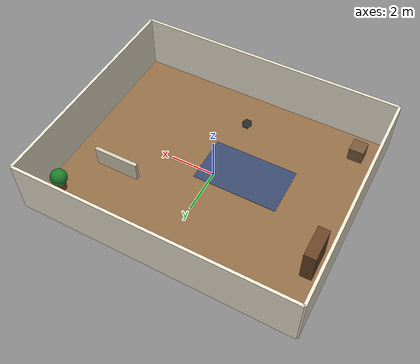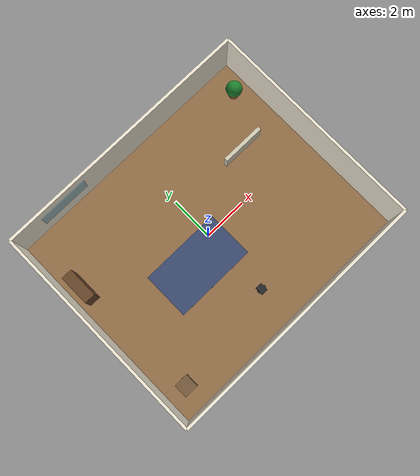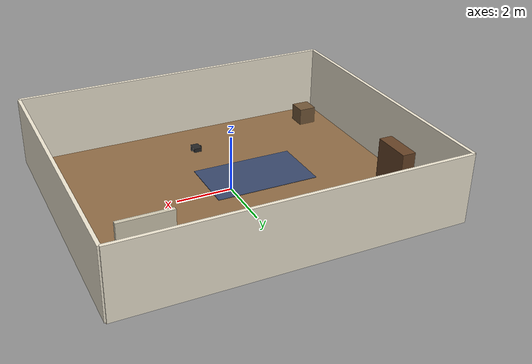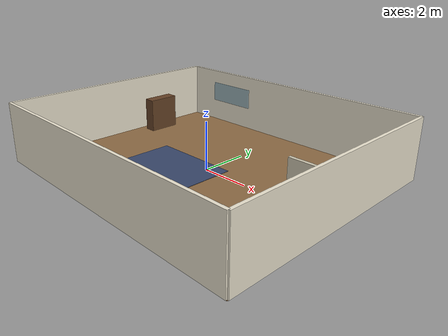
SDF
<sdf version="1.8">
 <world name="living_room_world">
  <physics name="1ms" type="ignored">
   <max_step_size>0.003</max_step_size>
   <real_time_factor>1.0</real_time_factor>
  </physics>
  <plugin filename="ignition-gazebo-physics-system" name="gz::sim::systems::Physics"/>
  <plugin filename="ignition-gazebo-user-commands-system" name="gz::sim::systems::UserCommands"/>
  <plugin filename="ignition-gazebo-scene-broadcaster-system" name="gz::sim::systems::SceneBroadcaster"/>
  <plugin filename="ignition-gazebo-sensors-system" name="gz::sim::systems::Sensors">
   <render_engine>ogre2</render_engine>
  </plugin>
  <plugin filename="ignition-gazebo-imu-system" name="gz::sim::systems::Imu"/>
  <scene>
   <ambient>0.62 0.60 0.56 1</ambient>
   <background>0.78 0.84 0.88 1</background>
   <shadows>true</shadows>
  </scene>
  <light type="directional" name="sun">
   <pose>0 0 10 0 0 0</pose>
   <diffuse>0.95 0.92 0.86 1</diffuse>
   <specular>0.25 0.25 0.25 1</specular>
   <attenuation>
    <range>1000</range>
    <constant>0.9</constant>
    <linear>0.01</linear>
    <quadratic>0.001</quadratic>
   </attenuation>
   <direction>-0.35 0.25 -1.0</direction>
  </light>
  <light type="point" name="warm_room_light">
   <pose>-3.9 3.6 2.5 0 0 0</pose>
   <diffuse>0.95 0.78 0.52 1</diffuse>
   <specular>0.15 0.12 0.08 1</specular>
   <attenuation>
    <range>9</range>
    <constant>0.8</constant>
    <linear>0.08</linear>
    <quadratic>0.01</quadratic>
   </attenuation>
  </light>
  <model name="warm_wood_floor">
   <static>true</static>
   <pose>0 0 -0.025 0 0 0</pose>
   <link name="link">
    <collision name="collision"><geometry><box><size>12 10 0.05</size></box></geometry></collision>
    <visual name="visual">
     <geometry><box><size>12 10 0.05</size></box></geometry>
     <material>
      <ambient>0.48 0.36 0.23 1</ambient>
      <diffuse>0.56 0.42 0.27 1</diffuse>
      <specular>0.08 0.06 0.04 1</specular>
     </material>
    </visual>
   </link>
  </model>
  <model name="wall_north">
   <static>true</static>
   <pose>0 5 1.25 0 0 0</pose>
   <link name="link">
    <collision name="collision"><geometry><box><size>12 0.12 2.5</size></box></geometry></collision>
    <visual name="visual">
     <geometry><box><size>12 0.12 2.5</size></box></geometry>
     <material><ambient>0.86 0.84 0.78 1</ambient><diffuse>0.93 0.90 0.82 1</diffuse></material>
    </visual>
   </link>
  </model>
  <model name="wall_south">
   <static>true</static>
   <pose>0 -5 1.25 0 0 0</pose>
   <link name="link">
    <collision name="collision"><geometry><box><size>12 0.12 2.5</size></box></geometry></collision>
    <visual name="visual">
     <geometry><box><size>12 0.12 2.5</size></box></geometry>
     <material><ambient>0.86 0.84 0.78 1</ambient><diffuse>0.93 0.90 0.82 1</diffuse></material>
    </visual>
   </link>
  </model>
  <model name="wall_east">
   <static>true</static>
   <pose>6 0 1.25 0 0 0</pose>
   <link name="link">
    <collision name="collision"><geometry><box><size>0.12 10 2.5</size></box></geometry></collision>
    <visual name="visual">
     <geometry><box><size>0.12 10 2.5</size></box></geometry>
     <material><ambient>0.86 0.84 0.78 1</ambient><diffuse>0.93 0.90 0.82 1</diffuse></material>
    </visual>
   </link>
  </model>
  <model name="wall_west">
   <static>true</static>
   <pose>-6 0 1.25 0 0 0</pose>
   <link name="link">
    <collision name="collision"><geometry><box><size>0.12 10 2.5</size></box></geometry></collision>
    <visual name="visual">
     <geometry><box><size>0.12 10 2.5</size></box></geometry>
     <material><ambient>0.86 0.84 0.78 1</ambient><diffuse>0.93 0.90 0.82 1</diffuse></material>
    </visual>
   </link>
  </model>
  <model name="low_media_divider">
   <static>true</static>
   <pose>3.7 1.7 0.45 0 0 0</pose>
   <link name="link">
    <collision name="collision"><geometry><box><size>2.0 0.16 0.9</size></box></geometry></collision>
    <visual name="visual">
     <geometry><box><size>2.0 0.16 0.9</size></box></geometry>
     <material><ambient>0.72 0.70 0.64 1</ambient><diffuse>0.82 0.79 0.70 1</diffuse></material>
    </visual>
   </link>
  </model>
  <model name="area_rug">
   <static>true</static>
   <pose>-1.2 -0.6 0.01 0 0 0</pose>
   <link name="link">
    <visual name="visual">
     <geometry><box><size>3.8 2.2 0.02</size></box></geometry>
     <material><ambient>0.18 0.22 0.32 1</ambient><diffuse>0.22 0.28 0.42 1</diffuse></material>
    </visual>
   </link>
  </model>
  <model name="bookshelf_static">
   <static>true</static>
   <pose>-5.35 2.0 0.75 0 0 0</pose>
   <link name="body">
    <collision name="collision"><geometry><box><size>0.5 1.4 1.5</size></box></geometry></collision>
    <visual name="case">
     <geometry><box><size>0.5 1.4 1.5</size></box></geometry>
     <material><ambient>0.30 0.19 0.11 1</ambient><diffuse>0.40 0.26 0.15 1</diffuse></material>
    </visual>
   </link>
  </model>
  <model name="plant_static">
   <static>true</static>
   <pose>5.15 3.7 0.35 0 0 0</pose>
   <link name="pot">
    <collision name="collision">
     <geometry><cylinder><radius>0.22</radius><length>0.35</length></cylinder></geometry>
    </collision>
    <visual name="visual">
     <geometry><cylinder><radius>0.22</radius><length>0.35</length></cylinder></geometry>
     <material><ambient>0.42 0.23 0.12 1</ambient><diffuse>0.52 0.30 0.15 1</diffuse></material>
    </visual>
   </link>
   <link name="leaves">
    <pose>0 0 0.52 0 0 0</pose>
    <collision name="collision"><geometry><sphere><radius>0.36</radius></sphere></geometry></collision>
    <visual name="visual">
     <geometry><sphere><radius>0.36</radius></sphere></geometry>
     <material><ambient>0.08 0.36 0.12 1</ambient><diffuse>0.12 0.50 0.18 1</diffuse></material>
    </visual>
   </link>
   <joint name="leaves_fixed" type="fixed"><parent>pot</parent><child>leaves</child></joint>
  </model>
  <model name="side_table_static">
   <static>true</static>
   <pose>-5.0 -3.85 0.32 0 0 0</pose>
   <link name="body">
    <collision name="collision"><geometry><box><size>0.65 0.65 0.64</size></box></geometry></collision>
    <visual name="visual">
     <geometry><box><size>0.65 0.65 0.64</size></box></geometry>
     <material><ambient>0.36 0.27 0.18 1</ambient><diffuse>0.45 0.34 0.22 1</diffuse></material>
    </visual>
   </link>
  </model>
  <model name="wide_window_north">
   <static>true</static>
   <pose>-3.4 4.92 1.45 0 0 0</pose>
   <link name="link">
    <visual name="glass">
     <geometry><box><size>2.3 0.03 0.9</size></box></geometry>
     <material>
      <ambient>0.42 0.62 0.72 0.55</ambient>
      <diffuse>0.42 0.62 0.72 0.55</diffuse>
      <emissive>0.04 0.07 0.09 1</emissive>
     </material>
    </visual>
   </link>
  </model>
  <model name="vla_bot">
   <pose>0 -3.2 0.1 0 0 1.5707</pose>
   <link name="base_link">
    <inertial><mass>5.0</mass><inertia><ixx>0.1</ixx><iyy>0.1</iyy><izz>0.15</izz></inertia></inertial>
    <collision name="c"><geometry><box><size>0.4 0.3 0.15</size></box></geometry></collision>
    <visual name="v">
     <geometry><box><size>0.4 0.3 0.15</size></box></geometry>
     <material><ambient>0.1 0.1 0.1 1</ambient><diffuse>0.15 0.15 0.15 1</diffuse></material>
    </visual>
    <sensor name="rgb_camera" type="camera">
     <pose>0.2 0 0.1 0 0 0</pose>
     <always_on>1</always_on>
     <update_rate>15</update_rate>
     <visualize>true</visualize>
     <topic>camera/image</topic>
     <camera>
      <horizontal_fov>1.3</horizontal_fov>
      <image><width>320</width><height>240</height><format>R8G8B8</format></image>
      <clip><near>0.05</near><far>50</far></clip>
     </camera>
    </sensor>
    <sensor name="gpu_lidar" type="gpu_lidar">
     <pose>0 0 0.15 0 0 0</pose>
     <always_on>1</always_on>
     <update_rate>10</update_rate>
     <visualize>true</visualize>
     <topic>scan</topic>
     <gz_frame_id>vla_bot/base_link/gpu_lidar</gz_frame_id>
     <ray>
      <scan>
       <horizontal>
        <samples>360</samples>
        <resolution>1</resolution>
        <min_angle>-3.14159</min_angle>
        <max_angle>3.14159</max_angle>
       </horizontal>
       <vertical>
        <samples>1</samples>
        <resolution>0.01</resolution>
        <min_angle>0</min_angle>
        <max_angle>0</max_angle>
       </vertical>
      </scan>
      <range><min>0.12</min><max>12.0</max><resolution>0.01</resolution></range>
     </ray>
    </sensor>
    <sensor name="imu_sensor" type="imu">
     <always_on>1</always_on>
     <update_rate>50</update_rate>
     <topic>imu</topic>
    </sensor>
   </link>
   <link name="left_wheel">
    <pose>0 0.18 0 -1.5707 0 0</pose>
    <inertial><mass>0.5</mass><inertia><ixx>0.001</ixx><iyy>0.001</iyy><izz>0.001</izz></inertia></inertial>
    <collision name="c">
     <geometry><cylinder><radius>0.08</radius><length>0.04</length></cylinder></geometry>
     <surface><friction><ode><mu>1.0</mu><mu2>1.0</mu2></ode></friction></surface>
    </collision>
    <visual name="v">
     <geometry><cylinder><radius>0.08</radius><length>0.04</length></cylinder></geometry>
     <material><ambient>0.05 0.05 0.05 1</ambient><diffuse>0.1 0.1 0.1 1</diffuse></material>
    </visual>
   </link>
   <link name="right_wheel">
    <pose>0 -0.18 0 -1.5707 0 0</pose>
    <inertial><mass>0.5</mass><inertia><ixx>0.001</ixx><iyy>0.001</iyy><izz>0.001</izz></inertia></inertial>
    <collision name="c">
     <geometry><cylinder><radius>0.08</radius><length>0.04</length></cylinder></geometry>
     <surface><friction><ode><mu>1.0</mu><mu2>1.0</mu2></ode></friction></surface>
    </collision>
    <visual name="v">
     <geometry><cylinder><radius>0.08</radius><length>0.04</length></cylinder></geometry>
     <material><ambient>0.05 0.05 0.05 1</ambient><diffuse>0.1 0.1 0.1 1</diffuse></material>
    </visual>
   </link>
   <link name="caster">
    <pose>-0.15 0 -0.05 0 0 0</pose>
    <inertial><mass>0.1</mass><inertia><ixx>0.0001</ixx><iyy>0.0001</iyy><izz>0.0001</izz></inertia></inertial>
    <collision name="c">
     <geometry><sphere><radius>0.03</radius></sphere></geometry>
     <surface><friction><ode><mu>0.0</mu><mu2>0.0</mu2></ode></friction></surface>
    </collision>
    <visual name="v">
     <geometry><sphere><radius>0.03</radius></sphere></geometry>
     <material><ambient>0.4 0.4 0.4 1</ambient><diffuse>0.5 0.5 0.5 1</diffuse></material>
    </visual>
   </link>
   <joint name="left_wheel_joint" type="revolute">
    <parent>base_link</parent>
    <child>left_wheel</child>
    <axis><xyz>0 0 1</xyz><limit><lower>-1.79769e+308</lower><upper>1.79769e+308</upper></limit></axis>
   </joint>
   <joint name="right_wheel_joint" type="revolute">
    <parent>base_link</parent>
    <child>right_wheel</child>
    <axis><xyz>0 0 1</xyz><limit><lower>-1.79769e+308</lower><upper>1.79769e+308</upper></limit></axis>
   </joint>
   <joint name="caster_joint" type="ball"><parent>base_link</parent><child>caster</child></joint>
   <plugin filename="ignition-gazebo-diff-drive-system" name="gz::sim::systems::DiffDrive">
    <left_joint>left_wheel_joint</left_joint>
    <right_joint>right_wheel_joint</right_joint>
    <wheel_separation>0.36</wheel_separation>
    <wheel_radius>0.08</wheel_radius>
    <odom_publish_frequency>30</odom_publish_frequency>
    <topic>cmd_vel</topic>
    <odom_topic>odom</odom_topic>
    <frame_id>odom</frame_id>
    <child_frame_id>base_link</child_frame_id>
    <max_linear_acceleration>2.0</max_linear_acceleration>
    <min_linear_acceleration>-2.0</min_linear_acceleration>
    <max_angular_acceleration>3.0</max_angular_acceleration>
    <min_angular_acceleration>-3.0</min_angular_acceleration>
    <max_linear_velocity>1.0</max_linear_velocity>
    <min_linear_velocity>-1.0</min_linear_velocity>
    <max_angular_velocity>2.0</max_angular_velocity>
    <min_angular_velocity>-2.0</min_angular_velocity>
   </plugin>
   <plugin filename="ignition-gazebo-joint-state-publisher-system" name="gz::sim::systems::JointStatePublisher">
    <topic>joint_states</topic>
   </plugin>
   <plugin filename="ignition-gazebo-pose-publisher-system" name="gz::sim::systems::PosePublisher">
    <publish_link_pose>true</publish_link_pose>
    <publish_sensor_pose>true</publish_sensor_pose>
    <publish_collision_pose>false</publish_collision_pose>
    <publish_visual_pose>false</publish_visual_pose>
    <publish_nested_model_pose>true</publish_nested_model_pose>
    <use_pose_vector_msg>true</use_pose_vector_msg>
    <static_publisher>true</static_publisher>
    <static_update_frequency>1</static_update_frequency>
   </plugin>
  </model>
 </world>
</sdf>
